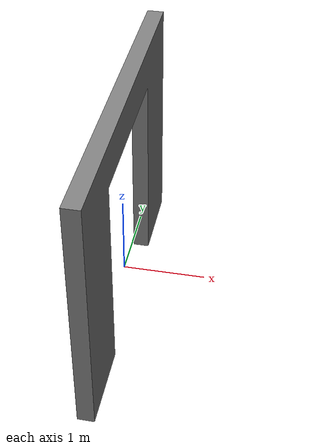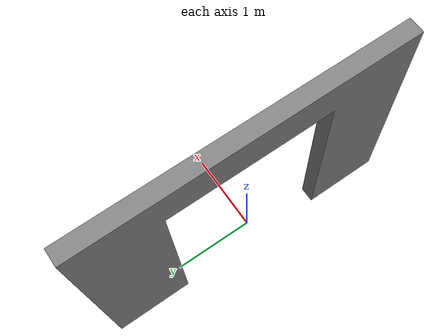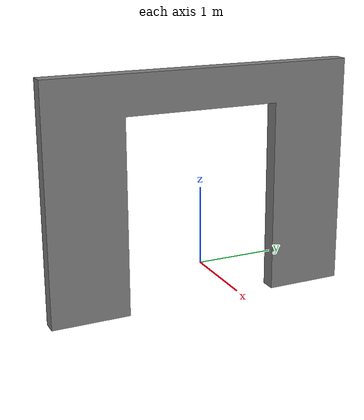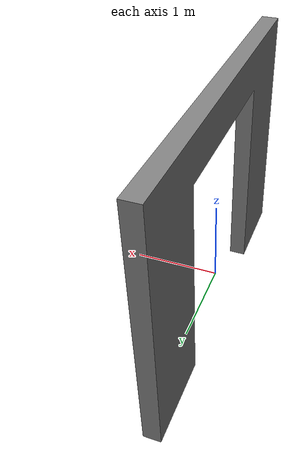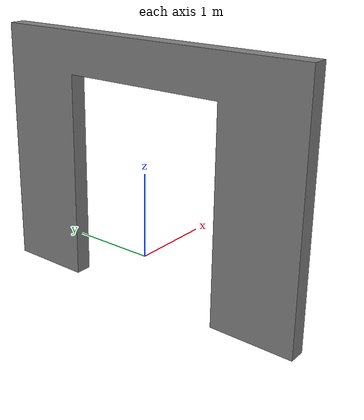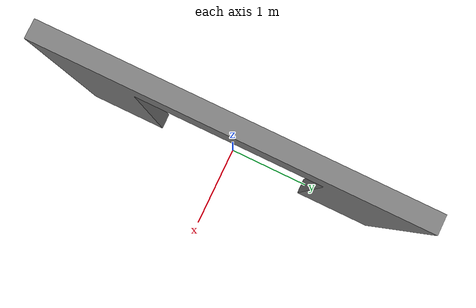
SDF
<?xml version="1.0"?>

<sdf version="1.6">
  <model name="goal">
    <static>true</static>
    <pose frame=''>0 0 -0.5 0 0 0</pose>
    <link name="link">
      <collision name="goal_collision">
        <geometry>
          <mesh>
            <uri>file://gate.dae</uri>
            <scale>1.0 1.0 1.0</scale>
          </mesh>
        </geometry>
      </collision>
      <visual name="goal_visual">
        <geometry>
          <mesh>
            <uri>file://gate.dae</uri>
            <scale>1.0 1.0 1.0</scale>
          </mesh>
        </geometry>
      <material>
          <ambient>0.5 0.5 0.5</ambient>
          <diffuse>0.5 0.5 0.5</diffuse>
          <specular>0.1 0.1 0.1 1</specular>
          <emissive>0 0 0 1</emissive>
      </material>
      </visual>

      <gravity>0</gravity>
    </link>
  </model>
</sdf>
